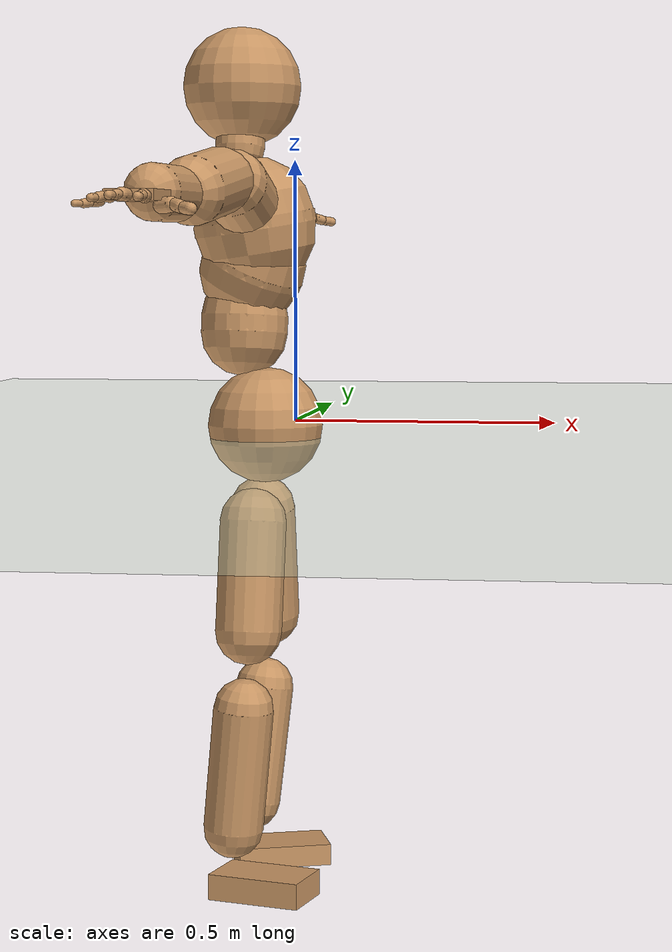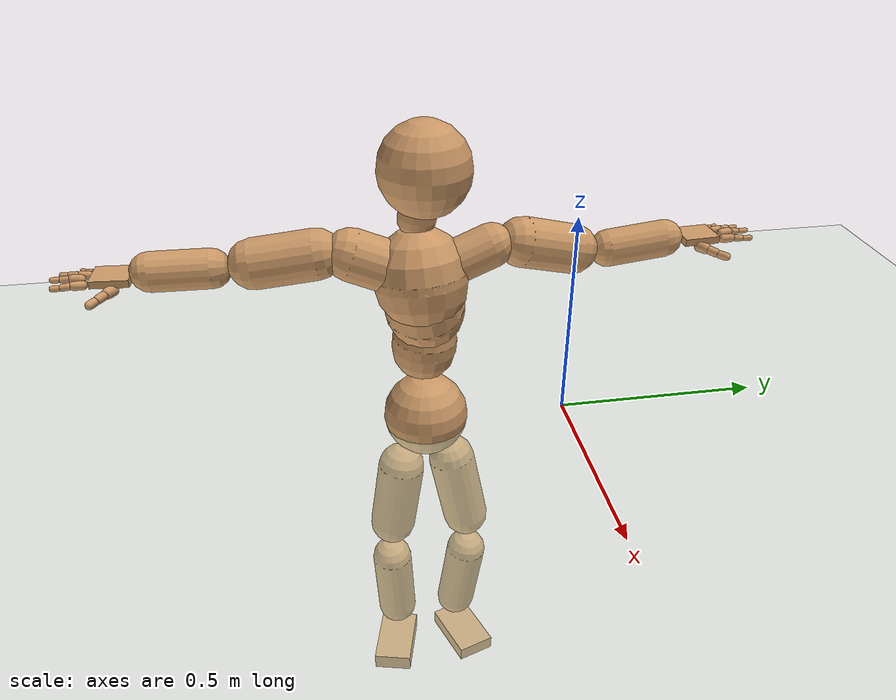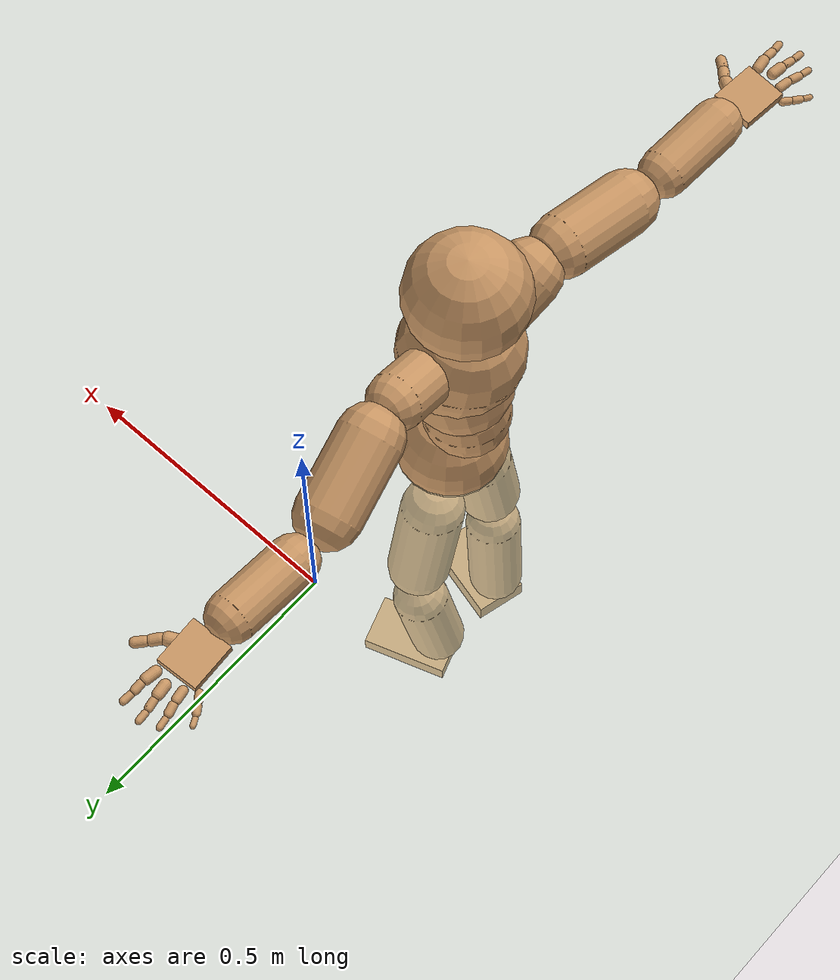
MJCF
<mujoco model="humanoid">
  <compiler coordinate="local" angle="radian"/>
  <default>
    <joint damping="0.0" armature="0.01" stiffness="0.0" limited="true"/>
    <geom conaffinity="1" condim="3" contype="7" margin="0.001" rgba="0.8 0.6 .4 1"/>
  </default>
  <asset>
    <texture type="skybox" builtin="gradient" rgb1=".4 .5 .6" rgb2="0 0 0" width="100" height="100"/>
    <texture builtin="flat" height="1278" mark="cross" markrgb="1 1 1" name="texgeom" random="0.01" rgb1="0.8 0.6 0.4" rgb2="0.8 0.6 0.4" type="cube" width="127"/>
    <texture builtin="checker" height="100" name="texplane" rgb1="0 0 0" rgb2="0.8 0.8 0.8" type="2d" width="100"/>
    <material name="MatPlane" reflectance="0.5" shininess="1" specular="1" texrepeat="60 60" texture="texplane"/>
    <material name="geom" texture="texgeom" texuniform="true"/>
  </asset>
  <worldbody>
    <light cutoff="100" diffuse="1 1 1" dir="-0 0 -1.3" directional="true" exponent="1" pos="0 0 1.3" specular=".1 .1 .1"/>
    <geom conaffinity="1" condim="3" name="floor" pos="0 0 0" rgba="0.8 0.9 0.8 1" size="100 100 .2" type="plane" material="MatPlane"/>
    <body name="Pelvis" pos="0.0013 -0.3485 0.0207">
      <freejoint name="Pelvis"/>
      <geom type="sphere" contype="1" conaffinity="1" density="500" size="0.1024" pos="0.0000 0.0000 0.0000" name="Pelvis"/>
      <body name="L_Hip" pos="-0.0179 0.0533 -0.09">
        <joint name="L_Hip_x" type="hinge" pos="0 0 0" axis="1 0 0" stiffness="800" damping="80" armature="0.02" range="-180.0000 180.0000"/>
        <joint name="L_Hip_y" type="hinge" pos="0 0 0" axis="0 1 0" stiffness="800" damping="80" armature="0.02" range="-180.0000 180.0000"/>
        <joint name="L_Hip_z" type="hinge" pos="0 0 0" axis="0 0 1" stiffness="800" damping="80" armature="0.02" range="-180.0000 180.0000"/>
        <geom type="capsule" contype="1" conaffinity="1" density="500" fromto="0.0003 0.0128 -0.0666 0.0013 0.0511 -0.2665" size="0.0584" name="L_Hip"/>
        <body name="L_Knee" pos="0.0016 0.0639 -0.3331">
          <joint name="L_Knee_x" type="hinge" pos="0 0 0" axis="1 0 0" stiffness="800" damping="80" armature="0.02" range="-180.0000 180.0000"/>
          <joint name="L_Knee_y" type="hinge" pos="0 0 0" axis="0 1 0" stiffness="800" damping="80" armature="0.02" range="-180.0000 180.0000"/>
          <joint name="L_Knee_z" type="hinge" pos="0 0 0" axis="0 0 1" stiffness="800" damping="80" armature="0.02" range="-180.0000 180.0000"/>
          <geom type="capsule" contype="1" conaffinity="1" density="500" fromto="-0.0072 -0.0086 -0.0701 -0.0287 -0.0343 -0.2805" size="0.0528" name="L_Knee"/>
          <body name="L_Ankle" pos="-0.0358 -0.0428 -0.3507">
            <joint name="L_Ankle_x" type="hinge" pos="0 0 0" axis="1 0 0" stiffness="800" damping="80" armature="0.02" range="-180.0000 180.0000"/>
            <joint name="L_Ankle_y" type="hinge" pos="0 0 0" axis="0 1 0" stiffness="800" damping="80" armature="0.02" range="-180.0000 180.0000"/>
            <joint name="L_Ankle_z" type="hinge" pos="0 0 0" axis="0 0 1" stiffness="800" damping="80" armature="0.02" range="-180.0000 180.0000"/>
            <geom type="box" contype="1" conaffinity="1" density="500" pos="0.0605 0.0206 -0.0248" size="0.0843 0.0505 0.0191" quat="0.9865 0.0000 0.0000 0.1635" name="L_Ankle"/>
            <body name="L_Toe" pos="0.121 0.0412 -0.0495">
              <joint name="L_Toe_x" type="hinge" pos="0 0 0" axis="1 0 0" stiffness="500" damping="50" armature="0.02" range="-180.0000 180.0000"/>
              <joint name="L_Toe_y" type="hinge" pos="0 0 0" axis="0 1 0" stiffness="500" damping="50" armature="0.02" range="-180.0000 180.0000"/>
              <joint name="L_Toe_z" type="hinge" pos="0 0 0" axis="0 0 1" stiffness="500" damping="50" armature="0.02" range="-180.0000 180.0000"/>
              <geom type="box" contype="1" conaffinity="1" density="500" pos="0.0000 0.0000 0.0268" size="0.001 0.0024 0.0011" quat="0.9858 0.0000 0.0000 0.1682" name="L_Toe"/>
            </body>
          </body>
        </body>
      </body>
      <body name="R_Hip" pos="-0.0102 -0.0552 -0.1014">
        <joint name="R_Hip_x" type="hinge" pos="0 0 0" axis="1 0 0" stiffness="800" damping="80" armature="0.02" range="-180.0000 180.0000"/>
        <joint name="R_Hip_y" type="hinge" pos="0 0 0" axis="0 1 0" stiffness="800" damping="80" armature="0.02" range="-180.0000 180.0000"/>
        <joint name="R_Hip_z" type="hinge" pos="0 0 0" axis="0 0 1" stiffness="800" damping="80" armature="0.02" range="-180.0000 180.0000"/>
        <geom type="capsule" contype="1" conaffinity="1" density="500" fromto="-0.0013 -0.0097 -0.0635 -0.0054 -0.0387 -0.2540" size="0.0585" name="R_Hip"/>
        <body name="R_Knee" pos="-0.0067 -0.0484 -0.3175">
          <joint name="R_Knee_x" type="hinge" pos="0 0 0" axis="1 0 0" stiffness="800" damping="80" armature="0.02" range="-180.0000 180.0000"/>
          <joint name="R_Knee_y" type="hinge" pos="0 0 0" axis="0 1 0" stiffness="800" damping="80" armature="0.02" range="-180.0000 180.0000"/>
          <joint name="R_Knee_z" type="hinge" pos="0 0 0" axis="0 0 1" stiffness="800" damping="80" armature="0.02" range="-180.0000 180.0000"/>
          <geom type="capsule" contype="1" conaffinity="1" density="500" fromto="-0.0071 0.0031 -0.0723 -0.0283 0.0124 -0.2890" size="0.0528" name="R_Knee"/>
          <body name="R_Ankle" pos="-0.0354 0.0155 -0.3613">
            <joint name="R_Ankle_x" type="hinge" pos="0 0 0" axis="1 0 0" stiffness="800" damping="80" armature="0.02" range="-180.0000 180.0000"/>
            <joint name="R_Ankle_y" type="hinge" pos="0 0 0" axis="0 1 0" stiffness="800" damping="80" armature="0.02" range="-180.0000 180.0000"/>
            <joint name="R_Ankle_z" type="hinge" pos="0 0 0" axis="0 0 1" stiffness="800" damping="80" armature="0.02" range="-180.0000 180.0000"/>
            <geom type="box" contype="1" conaffinity="1" density="500" pos="0.0638 -0.0164 -0.0245" size="0.0843 0.0505 0.0228" quat="0.9921 0.0000 0.0000 -0.1258" name="R_Ankle"/>
            <body name="R_Toe" pos="0.1276 -0.0329 -0.049">
              <joint name="R_Toe_x" type="hinge" pos="0 0 0" axis="1 0 0" stiffness="500" damping="50" armature="0.02" range="-180.0000 180.0000"/>
              <joint name="R_Toe_y" type="hinge" pos="0 0 0" axis="0 1 0" stiffness="500" damping="50" armature="0.02" range="-180.0000 180.0000"/>
              <joint name="R_Toe_z" type="hinge" pos="0 0 0" axis="0 0 1" stiffness="500" damping="50" armature="0.02" range="-180.0000 180.0000"/>
              <geom type="box" contype="1" conaffinity="1" density="500" pos="0.0000 0.0000 0.0229" size="0.001 0.0024 0.0011" quat="0.9932 0.0000 0.0000 -0.1167" name="R_Toe"/>
            </body>
          </body>
        </body>
      </body>
      <body name="Torso" pos="-0.0393 -0.0012 0.1042">
        <joint name="Torso_x" type="hinge" pos="0 0 0" axis="1 0 0" stiffness="1000" damping="100" armature="0.02" range="-180.0000 180.0000"/>
        <joint name="Torso_y" type="hinge" pos="0 0 0" axis="0 1 0" stiffness="1000" damping="100" armature="0.02" range="-180.0000 180.0000"/>
        <joint name="Torso_z" type="hinge" pos="0 0 0" axis="0 0 1" stiffness="1000" damping="100" armature="0.02" range="-180.0000 180.0000"/>
        <geom type="capsule" contype="1" conaffinity="1" density="500" fromto="0.0021 0.0074 0.0879 0.0014 0.0049 0.0586" size="0.0768" name="Torso"/>
        <body name="Spine" pos="0.0036 0.0123 0.1465">
          <joint name="Spine_x" type="hinge" pos="0 0 0" axis="1 0 0" stiffness="1000" damping="100" armature="0.02" range="-180.0000 180.0000"/>
          <joint name="Spine_y" type="hinge" pos="0 0 0" axis="0 1 0" stiffness="1000" damping="100" armature="0.02" range="-180.0000 180.0000"/>
          <joint name="Spine_z" type="hinge" pos="0 0 0" axis="0 0 1" stiffness="1000" damping="100" armature="0.02" range="-180.0000 180.0000"/>
          <geom type="capsule" contype="1" conaffinity="1" density="500" fromto="0.0159 -0.0060 0.0331 0.0106 -0.0040 0.0221" size="0.0926" name="Spine"/>
          <body name="Chest" pos="0.0265 -0.01 0.0551">
            <joint name="Chest_x" type="hinge" pos="0 0 0" axis="1 0 0" stiffness="1000" damping="100" armature="0.02" range="-180.0000 180.0000"/>
            <joint name="Chest_y" type="hinge" pos="0 0 0" axis="0 1 0" stiffness="1000" damping="100" armature="0.02" range="-180.0000 180.0000"/>
            <joint name="Chest_z" type="hinge" pos="0 0 0" axis="0 0 1" stiffness="1000" damping="100" armature="0.02" range="-180.0000 180.0000"/>
            <geom type="capsule" contype="1" conaffinity="1" density="500" fromto="-0.0092 -0.0036 0.0590 -0.0062 -0.0024 0.0394" size="0.1079" name="Chest"/>
            <body name="Neck" pos="-0.0326 -0.0115 0.1529">
              <joint name="Neck_x" type="hinge" pos="0 0 0" axis="1 0 0" stiffness="500" damping="50" armature="0.02" range="-180.0000 180.0000"/>
              <joint name="Neck_y" type="hinge" pos="0 0 0" axis="0 1 0" stiffness="500" damping="50" armature="0.02" range="-180.0000 180.0000"/>
              <joint name="Neck_z" type="hinge" pos="0 0 0" axis="0 0 1" stiffness="500" damping="50" armature="0.02" range="-180.0000 180.0000"/>
              <geom type="capsule" contype="1" conaffinity="1" density="500" fromto="0.0003 0.0049 0.0269 0.0011 0.0197 0.1077" size="0.0433" name="Neck"/>
              <body name="Head" pos="0.0014 0.0246 0.1346">
                <joint name="Head_x" type="hinge" pos="0 0 0" axis="1 0 0" stiffness="500" damping="50" armature="0.02" range="-180.0000 180.0000"/>
                <joint name="Head_y" type="hinge" pos="0 0 0" axis="0 1 0" stiffness="500" damping="50" armature="0.02" range="-180.0000 180.0000"/>
                <joint name="Head_z" type="hinge" pos="0 0 0" axis="0 0 1" stiffness="500" damping="50" armature="0.02" range="-180.0000 180.0000"/>
                <geom type="sphere" contype="1" conaffinity="1" density="500" size="0.1043" pos="0.0000 0.0000 0.0000" name="Head"/>
              </body>
            </body>
            <body name="L_Thorax" pos="-0.0057 0.0433 0.0708">
              <joint name="L_Thorax_x" type="hinge" pos="0 0 0" axis="1 0 0" stiffness="500" damping="50" armature="0.02" range="-180.0000 180.0000"/>
              <joint name="L_Thorax_y" type="hinge" pos="0 0 0" axis="0 1 0" stiffness="500" damping="50" armature="0.02" range="-180.0000 180.0000"/>
              <joint name="L_Thorax_z" type="hinge" pos="0 0 0" axis="0 0 1" stiffness="500" damping="50" armature="0.02" range="-180.0000 180.0000"/>
              <geom type="capsule" contype="1" conaffinity="1" density="500" fromto="-0.0018 0.0286 0.0108 -0.0073 0.1144 0.0432" size="0.0502" name="L_Thorax"/>
              <body name="L_Shoulder" pos="-0.0092 0.143 0.0539">
                <joint name="L_Shoulder_x" type="hinge" pos="0 0 0" axis="1 0 0" stiffness="500" damping="50" armature="0.02" range="-180.0000 180.0000"/>
                <joint name="L_Shoulder_y" type="hinge" pos="0 0 0" axis="0 1 0" stiffness="500" damping="50" armature="0.02" range="-180.0000 180.0000"/>
                <joint name="L_Shoulder_z" type="hinge" pos="0 0 0" axis="0 0 1" stiffness="500" damping="50" armature="0.02" range="-180.0000 180.0000"/>
                <geom type="capsule" contype="1" conaffinity="1" density="500" fromto="-0.0096 0.0432 -0.0132 -0.0383 0.1730 -0.0527" size="0.0571" name="L_Shoulder"/>
                <body name="L_Elbow" pos="-0.0479 0.2162 -0.0659">
                  <joint name="L_Elbow_x" type="hinge" pos="0 0 0" axis="1 0 0" stiffness="500" damping="50" armature="0.02" range="-720.0000 720.0000"/>
                  <joint name="L_Elbow_y" type="hinge" pos="0 0 0" axis="0 1 0" stiffness="500" damping="50" armature="0.02" range="-720.0000 720.0000"/>
                  <joint name="L_Elbow_z" type="hinge" pos="0 0 0" axis="0 0 1" stiffness="500" damping="50" armature="0.02" range="-720.0000 720.0000"/>
                  <geom type="capsule" contype="1" conaffinity="1" density="500" fromto="0.0007 0.0446 0.0052 0.0029 0.1786 0.0208" size="0.0434" name="L_Elbow"/>
                  <body name="L_Wrist" pos="0.0036 0.2232 0.026">
                    <joint name="L_Wrist_x" type="hinge" pos="0 0 0" axis="1 0 0" stiffness="300" damping="30" armature="0.02" range="-180.0000 180.0000"/>
                    <joint name="L_Wrist_y" type="hinge" pos="0 0 0" axis="0 1 0" stiffness="300" damping="30" armature="0.02" range="-180.0000 180.0000"/>
                    <joint name="L_Wrist_z" type="hinge" pos="0 0 0" axis="0 0 1" stiffness="300" damping="30" armature="0.02" range="-180.0000 180.0000"/>
                    <geom type="box" contype="1" conaffinity="1" density="500" pos="-0.0024 0.0371 -0.0049" size="0.0423 0.0378 0.0082" quat="0.7296 0.0000 0.0000 -0.6839" name="L_Wrist"/>
                    <body name="L_Index1" pos="0.0224 0.0886 -0.0066">
                      <joint name="L_Index1_x" type="hinge" pos="0 0 0" axis="1 0 0" stiffness="100" damping="10" armature="0.02" range="-180.0000 180.0000"/>
                      <joint name="L_Index1_y" type="hinge" pos="0 0 0" axis="0 1 0" stiffness="100" damping="10" armature="0.02" range="-180.0000 180.0000"/>
                      <joint name="L_Index1_z" type="hinge" pos="0 0 0" axis="0 0 1" stiffness="100" damping="10" armature="0.02" range="-180.0000 180.0000"/>
                      <geom type="capsule" contype="1" conaffinity="1" density="500" fromto="0.0007 0.0062 0.0003 0.0030 0.0246 0.0014" size="0.0098" name="L_Index1"/>
                      <body name="L_Index2" pos="0.0037 0.0308 0.0017">
                        <joint name="L_Index2_x" type="hinge" pos="0 0 0" axis="1 0 0" stiffness="100" damping="10" armature="0.02" range="-180.0000 180.0000"/>
                        <joint name="L_Index2_y" type="hinge" pos="0 0 0" axis="0 1 0" stiffness="100" damping="10" armature="0.02" range="-180.0000 180.0000"/>
                        <joint name="L_Index2_z" type="hinge" pos="0 0 0" axis="0 0 1" stiffness="100" damping="10" armature="0.02" range="-180.0000 180.0000"/>
                        <geom type="capsule" contype="1" conaffinity="1" density="500" fromto="-0.0001 0.0044 -0.0005 -0.0004 0.0174 -0.0020" size="0.0078" name="L_Index2"/>
                        <body name="L_Index3" pos="-0.0004 0.0218 -0.0026">
                          <joint name="L_Index3_x" type="hinge" pos="0 0 0" axis="1 0 0" stiffness="100" damping="10" armature="0.02" range="-180.0000 180.0000"/>
                          <joint name="L_Index3_y" type="hinge" pos="0 0 0" axis="0 1 0" stiffness="100" damping="10" armature="0.02" range="-180.0000 180.0000"/>
                          <joint name="L_Index3_z" type="hinge" pos="0 0 0" axis="0 0 1" stiffness="100" damping="10" armature="0.02" range="-180.0000 180.0000"/>
                          <geom type="capsule" contype="1" conaffinity="1" density="500" fromto="0.0003 0.0048 -0.0001 0.0012 0.0190 -0.0004" size="0.0066" name="L_Index3"/>
                        </body>
                      </body>
                    </body>
                    <body name="L_Middle1" pos="-0.0024 0.0957 -0.0038">
                      <joint name="L_Middle1_x" type="hinge" pos="0 0 0" axis="1 0 0" stiffness="100" damping="10" armature="0.02" range="-180.0000 180.0000"/>
                      <joint name="L_Middle1_y" type="hinge" pos="0 0 0" axis="0 1 0" stiffness="100" damping="10" armature="0.02" range="-180.0000 180.0000"/>
                      <joint name="L_Middle1_z" type="hinge" pos="0 0 0" axis="0 0 1" stiffness="100" damping="10" armature="0.02" range="-180.0000 180.0000"/>
                      <geom type="capsule" contype="1" conaffinity="1" density="500" fromto="-0.0008 0.0059 0.0001 -0.0034 0.0236 0.0005" size="0.0099" name="L_Middle1"/>
                      <body name="L_Middle2" pos="-0.0042 0.0295 0.0006">
                        <joint name="L_Middle2_x" type="hinge" pos="0 0 0" axis="1 0 0" stiffness="100" damping="10" armature="0.02" range="-180.0000 180.0000"/>
                        <joint name="L_Middle2_y" type="hinge" pos="0 0 0" axis="0 1 0" stiffness="100" damping="10" armature="0.02" range="-180.0000 180.0000"/>
                        <joint name="L_Middle2_z" type="hinge" pos="0 0 0" axis="0 0 1" stiffness="100" damping="10" armature="0.02" range="-180.0000 180.0000"/>
                        <geom type="capsule" contype="1" conaffinity="1" density="500" fromto="-0.0009 0.0045 -0.0005 -0.0034 0.0179 -0.0020" size="0.0072" name="L_Middle2"/>
                        <body name="L_Middle3" pos="-0.0043 0.0224 -0.0025">
                          <joint name="L_Middle3_x" type="hinge" pos="0 0 0" axis="1 0 0" stiffness="100" damping="10" armature="0.02" range="-180.0000 180.0000"/>
                          <joint name="L_Middle3_y" type="hinge" pos="0 0 0" axis="0 1 0" stiffness="100" damping="10" armature="0.02" range="-180.0000 180.0000"/>
                          <joint name="L_Middle3_z" type="hinge" pos="0 0 0" axis="0 0 1" stiffness="100" damping="10" armature="0.02" range="-180.0000 180.0000"/>
                          <geom type="capsule" contype="1" conaffinity="1" density="500" fromto="-0.0005 0.0049 -0.0001 -0.0018 0.0195 -0.0004" size="0.0062" name="L_Middle3"/>
                        </body>
                      </body>
                    </body>
                    <body name="L_Pinky1" pos="-0.0448 0.0715 -0.0129">
                      <joint name="L_Pinky1_x" type="hinge" pos="0 0 0" axis="1 0 0" stiffness="100" damping="10" armature="0.02" range="-180.0000 180.0000"/>
                      <joint name="L_Pinky1_y" type="hinge" pos="0 0 0" axis="0 1 0" stiffness="100" damping="10" armature="0.02" range="-180.0000 180.0000"/>
                      <joint name="L_Pinky1_z" type="hinge" pos="0 0 0" axis="0 0 1" stiffness="100" damping="10" armature="0.02" range="-180.0000 180.0000"/>
                      <geom type="capsule" contype="1" conaffinity="1" density="500" fromto="-0.0024 0.0032 -0.0003 -0.0096 0.0127 -0.0013" size="0.007" name="L_Pinky1"/>
                      <body name="L_Pinky2" pos="-0.012 0.0159 -0.0016">
                        <joint name="L_Pinky2_x" type="hinge" pos="0 0 0" axis="1 0 0" stiffness="100" damping="10" armature="0.02" range="-180.0000 180.0000"/>
                        <joint name="L_Pinky2_y" type="hinge" pos="0 0 0" axis="0 1 0" stiffness="100" damping="10" armature="0.02" range="-180.0000 180.0000"/>
                        <joint name="L_Pinky2_z" type="hinge" pos="0 0 0" axis="0 0 1" stiffness="100" damping="10" armature="0.02" range="-180.0000 180.0000"/>
                        <geom type="capsule" contype="1" conaffinity="1" density="500" fromto="-0.0022 0.0031 -0.0004 -0.0087 0.0126 -0.0017" size="0.0067" name="L_Pinky2"/>
                        <body name="L_Pinky3" pos="-0.0109 0.0157 -0.0021">
                          <joint name="L_Pinky3_x" type="hinge" pos="0 0 0" axis="1 0 0" stiffness="100" damping="10" armature="0.02" range="-180.0000 180.0000"/>
                          <joint name="L_Pinky3_y" type="hinge" pos="0 0 0" axis="0 1 0" stiffness="100" damping="10" armature="0.02" range="-180.0000 180.0000"/>
                          <joint name="L_Pinky3_z" type="hinge" pos="0 0 0" axis="0 0 1" stiffness="100" damping="10" armature="0.02" range="-180.0000 180.0000"/>
                          <geom type="capsule" contype="1" conaffinity="1" density="500" fromto="-0.0018 0.0035 -0.0000 -0.0071 0.0142 -0.0001" size="0.0049" name="L_Pinky3"/>
                        </body>
                      </body>
                    </body>
                    <body name="L_Ring1" pos="-0.0273 0.0841 -0.0069">
                      <joint name="L_Ring1_x" type="hinge" pos="0 0 0" axis="1 0 0" stiffness="100" damping="10" armature="0.02" range="-180.0000 180.0000"/>
                      <joint name="L_Ring1_y" type="hinge" pos="0 0 0" axis="0 1 0" stiffness="100" damping="10" armature="0.02" range="-180.0000 180.0000"/>
                      <joint name="L_Ring1_z" type="hinge" pos="0 0 0" axis="0 0 1" stiffness="100" damping="10" armature="0.02" range="-180.0000 180.0000"/>
                      <geom type="capsule" contype="1" conaffinity="1" density="500" fromto="-0.0010 0.0055 0.0001 -0.0039 0.0219 0.0005" size="0.0084" name="L_Ring1"/>
                      <body name="L_Ring2" pos="-0.0048 0.0274 0.0006">
                        <joint name="L_Ring2_x" type="hinge" pos="0 0 0" axis="1 0 0" stiffness="100" damping="10" armature="0.02" range="-180.0000 180.0000"/>
                        <joint name="L_Ring2_y" type="hinge" pos="0 0 0" axis="0 1 0" stiffness="100" damping="10" armature="0.02" range="-180.0000 180.0000"/>
                        <joint name="L_Ring2_z" type="hinge" pos="0 0 0" axis="0 0 1" stiffness="100" damping="10" armature="0.02" range="-180.0000 180.0000"/>
                        <geom type="capsule" contype="1" conaffinity="1" density="500" fromto="-0.0013 0.0045 -0.0005 -0.0051 0.0179 -0.0020" size="0.0077" name="L_Ring2"/>
                        <body name="L_Ring3" pos="-0.0064 0.0223 -0.0025">
                          <joint name="L_Ring3_x" type="hinge" pos="0 0 0" axis="1 0 0" stiffness="100" damping="10" armature="0.02" range="-180.0000 180.0000"/>
                          <joint name="L_Ring3_y" type="hinge" pos="0 0 0" axis="0 1 0" stiffness="100" damping="10" armature="0.02" range="-180.0000 180.0000"/>
                          <joint name="L_Ring3_z" type="hinge" pos="0 0 0" axis="0 0 1" stiffness="100" damping="10" armature="0.02" range="-180.0000 180.0000"/>
                          <geom type="capsule" contype="1" conaffinity="1" density="500" fromto="-0.0009 0.0049 -0.0001 -0.0035 0.0195 -0.0004" size="0.0058" name="L_Ring3"/>
                        </body>
                      </body>
                    </body>
                    <body name="L_Thumb1" pos="0.0281 0.0315 -0.0184">
                      <joint name="L_Thumb1_x" type="hinge" pos="0 0 0" axis="1 0 0" stiffness="100" damping="10" armature="0.02" range="-180.0000 180.0000"/>
                      <joint name="L_Thumb1_y" type="hinge" pos="0 0 0" axis="0 1 0" stiffness="100" damping="10" armature="0.02" range="-180.0000 180.0000"/>
                      <joint name="L_Thumb1_z" type="hinge" pos="0 0 0" axis="0 0 1" stiffness="100" damping="10" armature="0.02" range="-180.0000 180.0000"/>
                      <geom type="capsule" contype="1" conaffinity="1" density="500" fromto="0.0053 0.0029 0.0004 0.0211 0.0115 0.0018" size="0.0122" name="L_Thumb1"/>
                      <body name="L_Thumb2" pos="0.0264 0.0144 0.0022">
                        <joint name="L_Thumb2_x" type="hinge" pos="0 0 0" axis="1 0 0" stiffness="100" damping="10" armature="0.02" range="-180.0000 180.0000"/>
                        <joint name="L_Thumb2_y" type="hinge" pos="0 0 0" axis="0 1 0" stiffness="100" damping="10" armature="0.02" range="-180.0000 180.0000"/>
                        <joint name="L_Thumb2_z" type="hinge" pos="0 0 0" axis="0 0 1" stiffness="100" damping="10" armature="0.02" range="-180.0000 180.0000"/>
                        <geom type="capsule" contype="1" conaffinity="1" density="500" fromto="0.0033 0.0036 -0.0010 0.0131 0.0143 -0.0040" size="0.0099" name="L_Thumb2"/>
                        <body name="L_Thumb3" pos="0.0164 0.0178 -0.005">
                          <joint name="L_Thumb3_x" type="hinge" pos="0 0 0" axis="1 0 0" stiffness="100" damping="10" armature="0.02" range="-180.0000 180.0000"/>
                          <joint name="L_Thumb3_y" type="hinge" pos="0 0 0" axis="0 1 0" stiffness="100" damping="10" armature="0.02" range="-180.0000 180.0000"/>
                          <joint name="L_Thumb3_z" type="hinge" pos="0 0 0" axis="0 0 1" stiffness="100" damping="10" armature="0.02" range="-180.0000 180.0000"/>
                          <geom type="capsule" contype="1" conaffinity="1" density="500" fromto="0.0037 0.0040 -0.0006 0.0147 0.0159 -0.0024" size="0.0091" name="L_Thumb3"/>
                        </body>
                      </body>
                    </body>
                  </body>
                </body>
              </body>
            </body>
            <body name="R_Thorax" pos="-0.0079 -0.0496 0.0716">
              <joint name="R_Thorax_x" type="hinge" pos="0 0 0" axis="1 0 0" stiffness="500" damping="50" armature="0.02" range="-180.0000 180.0000"/>
              <joint name="R_Thorax_y" type="hinge" pos="0 0 0" axis="0 1 0" stiffness="500" damping="50" armature="0.02" range="-180.0000 180.0000"/>
              <joint name="R_Thorax_z" type="hinge" pos="0 0 0" axis="0 0 1" stiffness="500" damping="50" armature="0.02" range="-180.0000 180.0000"/>
              <geom type="capsule" contype="1" conaffinity="1" density="500" fromto="-0.0023 -0.0263 0.0104 -0.0093 -0.1050 0.0415" size="0.0591" name="R_Thorax"/>
              <body name="R_Shoulder" pos="-0.0116 -0.1313 0.0518">
                <joint name="R_Shoulder_x" type="hinge" pos="0 0 0" axis="1 0 0" stiffness="500" damping="50" armature="0.02" range="-180.0000 180.0000"/>
                <joint name="R_Shoulder_y" type="hinge" pos="0 0 0" axis="0 1 0" stiffness="500" damping="50" armature="0.02" range="-180.0000 180.0000"/>
                <joint name="R_Shoulder_z" type="hinge" pos="0 0 0" axis="0 0 1" stiffness="500" damping="50" armature="0.02" range="-180.0000 180.0000"/>
                <geom type="capsule" contype="1" conaffinity="1" density="500" fromto="-0.0060 -0.0464 -0.0068 -0.0242 -0.1857 -0.0272" size="0.0565" name="R_Shoulder"/>
                <body name="R_Elbow" pos="-0.0302 -0.2321 -0.034">
                  <joint name="R_Elbow_x" type="hinge" pos="0 0 0" axis="1 0 0" stiffness="500" damping="50" armature="0.02" range="-720.0000 720.0000"/>
                  <joint name="R_Elbow_y" type="hinge" pos="0 0 0" axis="0 1 0" stiffness="500" damping="50" armature="0.02" range="-720.0000 720.0000"/>
                  <joint name="R_Elbow_z" type="hinge" pos="0 0 0" axis="0 0 1" stiffness="500" damping="50" armature="0.02" range="-720.0000 720.0000"/>
                  <geom type="capsule" contype="1" conaffinity="1" density="500" fromto="-0.0017 -0.0436 -0.0002 -0.0067 -0.1744 -0.0007" size="0.0442" name="R_Elbow"/>
                  <body name="R_Wrist" pos="-0.0083 -0.218 -0.0008">
                    <joint name="R_Wrist_x" type="hinge" pos="0 0 0" axis="1 0 0" stiffness="300" damping="30" armature="0.02" range="-180.0000 180.0000"/>
                    <joint name="R_Wrist_y" type="hinge" pos="0 0 0" axis="0 1 0" stiffness="300" damping="30" armature="0.02" range="-180.0000 180.0000"/>
                    <joint name="R_Wrist_z" type="hinge" pos="0 0 0" axis="0 0 1" stiffness="300" damping="30" armature="0.02" range="-180.0000 180.0000"/>
                    <geom type="box" contype="1" conaffinity="1" density="500" pos="-0.0030 -0.0369 -0.0067" size="0.0423 0.0386 0.0083" quat="0.7348 0.0000 0.0000 0.6783" name="R_Wrist"/>
                    <body name="R_Index1" pos="0.0213 -0.0882 -0.0103">
                      <joint name="R_Index1_x" type="hinge" pos="0 0 0" axis="1 0 0" stiffness="100" damping="10" armature="0.02" range="-180.0000 180.0000"/>
                      <joint name="R_Index1_y" type="hinge" pos="0 0 0" axis="0 1 0" stiffness="100" damping="10" armature="0.02" range="-180.0000 180.0000"/>
                      <joint name="R_Index1_z" type="hinge" pos="0 0 0" axis="0 0 1" stiffness="100" damping="10" armature="0.02" range="-180.0000 180.0000"/>
                      <geom type="capsule" contype="1" conaffinity="1" density="500" fromto="0.0007 -0.0062 0.0003 0.0030 -0.0246 0.0014" size="0.0098" name="R_Index1"/>
                      <body name="R_Index2" pos="0.0037 -0.0308 0.0017">
                        <joint name="R_Index2_x" type="hinge" pos="0 0 0" axis="1 0 0" stiffness="100" damping="10" armature="0.02" range="-180.0000 180.0000"/>
                        <joint name="R_Index2_y" type="hinge" pos="0 0 0" axis="0 1 0" stiffness="100" damping="10" armature="0.02" range="-180.0000 180.0000"/>
                        <joint name="R_Index2_z" type="hinge" pos="0 0 0" axis="0 0 1" stiffness="100" damping="10" armature="0.02" range="-180.0000 180.0000"/>
                        <geom type="capsule" contype="1" conaffinity="1" density="500" fromto="-0.0001 -0.0044 -0.0005 -0.0004 -0.0174 -0.0020" size="0.0078" name="R_Index2"/>
                        <body name="R_Index3" pos="-0.0004 -0.0218 -0.0026">
                          <joint name="R_Index3_x" type="hinge" pos="0 0 0" axis="1 0 0" stiffness="100" damping="10" armature="0.02" range="-180.0000 180.0000"/>
                          <joint name="R_Index3_y" type="hinge" pos="0 0 0" axis="0 1 0" stiffness="100" damping="10" armature="0.02" range="-180.0000 180.0000"/>
                          <joint name="R_Index3_z" type="hinge" pos="0 0 0" axis="0 0 1" stiffness="100" damping="10" armature="0.02" range="-180.0000 180.0000"/>
                          <geom type="capsule" contype="1" conaffinity="1" density="500" fromto="0.0003 -0.0040 -0.0001 0.0012 -0.0158 -0.0004" size="0.0069" name="R_Index3"/>
                        </body>
                      </body>
                    </body>
                    <body name="R_Middle1" pos="-0.0035 -0.0953 -0.0076">
                      <joint name="R_Middle1_x" type="hinge" pos="0 0 0" axis="1 0 0" stiffness="100" damping="10" armature="0.02" range="-180.0000 180.0000"/>
                      <joint name="R_Middle1_y" type="hinge" pos="0 0 0" axis="0 1 0" stiffness="100" damping="10" armature="0.02" range="-180.0000 180.0000"/>
                      <joint name="R_Middle1_z" type="hinge" pos="0 0 0" axis="0 0 1" stiffness="100" damping="10" armature="0.02" range="-180.0000 180.0000"/>
                      <geom type="capsule" contype="1" conaffinity="1" density="500" fromto="-0.0008 -0.0059 0.0001 -0.0034 -0.0236 0.0005" size="0.0099" name="R_Middle1"/>
                      <body name="R_Middle2" pos="-0.0042 -0.0295 0.0006">
                        <joint name="R_Middle2_x" type="hinge" pos="0 0 0" axis="1 0 0" stiffness="100" damping="10" armature="0.02" range="-180.0000 180.0000"/>
                        <joint name="R_Middle2_y" type="hinge" pos="0 0 0" axis="0 1 0" stiffness="100" damping="10" armature="0.02" range="-180.0000 180.0000"/>
                        <joint name="R_Middle2_z" type="hinge" pos="0 0 0" axis="0 0 1" stiffness="100" damping="10" armature="0.02" range="-180.0000 180.0000"/>
                        <geom type="capsule" contype="1" conaffinity="1" density="500" fromto="-0.0009 -0.0045 -0.0005 -0.0034 -0.0179 -0.0020" size="0.0072" name="R_Middle2"/>
                        <body name="R_Middle3" pos="-0.0043 -0.0224 -0.0025">
                          <joint name="R_Middle3_x" type="hinge" pos="0 0 0" axis="1 0 0" stiffness="100" damping="10" armature="0.02" range="-180.0000 180.0000"/>
                          <joint name="R_Middle3_y" type="hinge" pos="0 0 0" axis="0 1 0" stiffness="100" damping="10" armature="0.02" range="-180.0000 180.0000"/>
                          <joint name="R_Middle3_z" type="hinge" pos="0 0 0" axis="0 0 1" stiffness="100" damping="10" armature="0.02" range="-180.0000 180.0000"/>
                          <geom type="capsule" contype="1" conaffinity="1" density="500" fromto="-0.0005 -0.0041 -0.0001 -0.0018 -0.0163 -0.0004" size="0.0065" name="R_Middle3"/>
                        </body>
                      </body>
                    </body>
                    <body name="R_Pinky1" pos="-0.0459 -0.071 -0.0166">
                      <joint name="R_Pinky1_x" type="hinge" pos="0 0 0" axis="1 0 0" stiffness="100" damping="10" armature="0.02" range="-180.0000 180.0000"/>
                      <joint name="R_Pinky1_y" type="hinge" pos="0 0 0" axis="0 1 0" stiffness="100" damping="10" armature="0.02" range="-180.0000 180.0000"/>
                      <joint name="R_Pinky1_z" type="hinge" pos="0 0 0" axis="0 0 1" stiffness="100" damping="10" armature="0.02" range="-180.0000 180.0000"/>
                      <geom type="capsule" contype="1" conaffinity="1" density="500" fromto="-0.0024 -0.0032 -0.0003 -0.0096 -0.0127 -0.0013" size="0.007" name="R_Pinky1"/>
                      <body name="R_Pinky2" pos="-0.012 -0.0159 -0.0016">
                        <joint name="R_Pinky2_x" type="hinge" pos="0 0 0" axis="1 0 0" stiffness="100" damping="10" armature="0.02" range="-180.0000 180.0000"/>
                        <joint name="R_Pinky2_y" type="hinge" pos="0 0 0" axis="0 1 0" stiffness="100" damping="10" armature="0.02" range="-180.0000 180.0000"/>
                        <joint name="R_Pinky2_z" type="hinge" pos="0 0 0" axis="0 0 1" stiffness="100" damping="10" armature="0.02" range="-180.0000 180.0000"/>
                        <geom type="capsule" contype="1" conaffinity="1" density="500" fromto="-0.0022 -0.0031 -0.0004 -0.0087 -0.0126 -0.0017" size="0.0067" name="R_Pinky2"/>
                        <body name="R_Pinky3" pos="-0.0109 -0.0157 -0.0021">
                          <joint name="R_Pinky3_x" type="hinge" pos="0 0 0" axis="1 0 0" stiffness="100" damping="10" armature="0.02" range="-180.0000 180.0000"/>
                          <joint name="R_Pinky3_y" type="hinge" pos="0 0 0" axis="0 1 0" stiffness="100" damping="10" armature="0.02" range="-180.0000 180.0000"/>
                          <joint name="R_Pinky3_z" type="hinge" pos="0 0 0" axis="0 0 1" stiffness="100" damping="10" armature="0.02" range="-180.0000 180.0000"/>
                          <geom type="capsule" contype="1" conaffinity="1" density="500" fromto="-0.0018 -0.0027 -0.0000 -0.0071 -0.0110 -0.0001" size="0.0052" name="R_Pinky3"/>
                        </body>
                      </body>
                    </body>
                    <body name="R_Ring1" pos="-0.0284 -0.0837 -0.0107">
                      <joint name="R_Ring1_x" type="hinge" pos="0 0 0" axis="1 0 0" stiffness="100" damping="10" armature="0.02" range="-180.0000 180.0000"/>
                      <joint name="R_Ring1_y" type="hinge" pos="0 0 0" axis="0 1 0" stiffness="100" damping="10" armature="0.02" range="-180.0000 180.0000"/>
                      <joint name="R_Ring1_z" type="hinge" pos="0 0 0" axis="0 0 1" stiffness="100" damping="10" armature="0.02" range="-180.0000 180.0000"/>
                      <geom type="capsule" contype="1" conaffinity="1" density="500" fromto="-0.0010 -0.0055 0.0001 -0.0039 -0.0219 0.0005" size="0.0084" name="R_Ring1"/>
                      <body name="R_Ring2" pos="-0.0048 -0.0274 0.0006">
                        <joint name="R_Ring2_x" type="hinge" pos="0 0 0" axis="1 0 0" stiffness="100" damping="10" armature="0.02" range="-180.0000 180.0000"/>
                        <joint name="R_Ring2_y" type="hinge" pos="0 0 0" axis="0 1 0" stiffness="100" damping="10" armature="0.02" range="-180.0000 180.0000"/>
                        <joint name="R_Ring2_z" type="hinge" pos="0 0 0" axis="0 0 1" stiffness="100" damping="10" armature="0.02" range="-180.0000 180.0000"/>
                        <geom type="capsule" contype="1" conaffinity="1" density="500" fromto="-0.0013 -0.0045 -0.0005 -0.0051 -0.0179 -0.0020" size="0.0077" name="R_Ring2"/>
                        <body name="R_Ring3" pos="-0.0064 -0.0223 -0.0025">
                          <joint name="R_Ring3_x" type="hinge" pos="0 0 0" axis="1 0 0" stiffness="100" damping="10" armature="0.02" range="-180.0000 180.0000"/>
                          <joint name="R_Ring3_y" type="hinge" pos="0 0 0" axis="0 1 0" stiffness="100" damping="10" armature="0.02" range="-180.0000 180.0000"/>
                          <joint name="R_Ring3_z" type="hinge" pos="0 0 0" axis="0 0 1" stiffness="100" damping="10" armature="0.02" range="-180.0000 180.0000"/>
                          <geom type="capsule" contype="1" conaffinity="1" density="500" fromto="-0.0009 -0.0041 -0.0001 -0.0035 -0.0163 -0.0004" size="0.0061" name="R_Ring3"/>
                        </body>
                      </body>
                    </body>
                    <body name="R_Thumb1" pos="0.0269 -0.0311 -0.0222">
                      <joint name="R_Thumb1_x" type="hinge" pos="0 0 0" axis="1 0 0" stiffness="100" damping="10" armature="0.02" range="-180.0000 180.0000"/>
                      <joint name="R_Thumb1_y" type="hinge" pos="0 0 0" axis="0 1 0" stiffness="100" damping="10" armature="0.02" range="-180.0000 180.0000"/>
                      <joint name="R_Thumb1_z" type="hinge" pos="0 0 0" axis="0 0 1" stiffness="100" damping="10" armature="0.02" range="-180.0000 180.0000"/>
                      <geom type="capsule" contype="1" conaffinity="1" density="500" fromto="0.0053 -0.0029 0.0004 0.0211 -0.0115 0.0018" size="0.0122" name="R_Thumb1"/>
                      <body name="R_Thumb2" pos="0.0264 -0.0144 0.0022">
                        <joint name="R_Thumb2_x" type="hinge" pos="0 0 0" axis="1 0 0" stiffness="100" damping="10" armature="0.02" range="-180.0000 180.0000"/>
                        <joint name="R_Thumb2_y" type="hinge" pos="0 0 0" axis="0 1 0" stiffness="100" damping="10" armature="0.02" range="-180.0000 180.0000"/>
                        <joint name="R_Thumb2_z" type="hinge" pos="0 0 0" axis="0 0 1" stiffness="100" damping="10" armature="0.02" range="-180.0000 180.0000"/>
                        <geom type="capsule" contype="1" conaffinity="1" density="500" fromto="0.0033 -0.0036 -0.0010 0.0131 -0.0143 -0.0040" size="0.0099" name="R_Thumb2"/>
                        <body name="R_Thumb3" pos="0.0164 -0.0178 -0.005">
                          <joint name="R_Thumb3_x" type="hinge" pos="0 0 0" axis="1 0 0" stiffness="100" damping="10" armature="0.02" range="-180.0000 180.0000"/>
                          <joint name="R_Thumb3_y" type="hinge" pos="0 0 0" axis="0 1 0" stiffness="100" damping="10" armature="0.02" range="-180.0000 180.0000"/>
                          <joint name="R_Thumb3_z" type="hinge" pos="0 0 0" axis="0 0 1" stiffness="100" damping="10" armature="0.02" range="-180.0000 180.0000"/>
                          <geom type="capsule" contype="1" conaffinity="1" density="500" fromto="0.0037 -0.0032 -0.0006 0.0147 -0.0127 -0.0024" size="0.0093" name="R_Thumb3"/>
                        </body>
                      </body>
                    </body>
                  </body>
                </body>
              </body>
            </body>
          </body>
        </body>
      </body>
    </body>
  </worldbody>
  <actuator>
    <motor name="L_Hip_x" joint="L_Hip_x" gear="500"/>
    <motor name="L_Hip_y" joint="L_Hip_y" gear="500"/>
    <motor name="L_Hip_z" joint="L_Hip_z" gear="500"/>
    <motor name="L_Knee_x" joint="L_Knee_x" gear="500"/>
    <motor name="L_Knee_y" joint="L_Knee_y" gear="500"/>
    <motor name="L_Knee_z" joint="L_Knee_z" gear="500"/>
    <motor name="L_Ankle_x" joint="L_Ankle_x" gear="500"/>
    <motor name="L_Ankle_y" joint="L_Ankle_y" gear="500"/>
    <motor name="L_Ankle_z" joint="L_Ankle_z" gear="500"/>
    <motor name="L_Toe_x" joint="L_Toe_x" gear="500"/>
    <motor name="L_Toe_y" joint="L_Toe_y" gear="500"/>
    <motor name="L_Toe_z" joint="L_Toe_z" gear="500"/>
    <motor name="R_Hip_x" joint="R_Hip_x" gear="500"/>
    <motor name="R_Hip_y" joint="R_Hip_y" gear="500"/>
    <motor name="R_Hip_z" joint="R_Hip_z" gear="500"/>
    <motor name="R_Knee_x" joint="R_Knee_x" gear="500"/>
    <motor name="R_Knee_y" joint="R_Knee_y" gear="500"/>
    <motor name="R_Knee_z" joint="R_Knee_z" gear="500"/>
    <motor name="R_Ankle_x" joint="R_Ankle_x" gear="500"/>
    <motor name="R_Ankle_y" joint="R_Ankle_y" gear="500"/>
    <motor name="R_Ankle_z" joint="R_Ankle_z" gear="500"/>
    <motor name="R_Toe_x" joint="R_Toe_x" gear="500"/>
    <motor name="R_Toe_y" joint="R_Toe_y" gear="500"/>
    <motor name="R_Toe_z" joint="R_Toe_z" gear="500"/>
    <motor name="Torso_x" joint="Torso_x" gear="500"/>
    <motor name="Torso_y" joint="Torso_y" gear="500"/>
    <motor name="Torso_z" joint="Torso_z" gear="500"/>
    <motor name="Spine_x" joint="Spine_x" gear="500"/>
    <motor name="Spine_y" joint="Spine_y" gear="500"/>
    <motor name="Spine_z" joint="Spine_z" gear="500"/>
    <motor name="Chest_x" joint="Chest_x" gear="500"/>
    <motor name="Chest_y" joint="Chest_y" gear="500"/>
    <motor name="Chest_z" joint="Chest_z" gear="500"/>
    <motor name="Neck_x" joint="Neck_x" gear="500"/>
    <motor name="Neck_y" joint="Neck_y" gear="500"/>
    <motor name="Neck_z" joint="Neck_z" gear="500"/>
    <motor name="Head_x" joint="Head_x" gear="500"/>
    <motor name="Head_y" joint="Head_y" gear="500"/>
    <motor name="Head_z" joint="Head_z" gear="500"/>
    <motor name="L_Thorax_x" joint="L_Thorax_x" gear="500"/>
    <motor name="L_Thorax_y" joint="L_Thorax_y" gear="500"/>
    <motor name="L_Thorax_z" joint="L_Thorax_z" gear="500"/>
    <motor name="L_Shoulder_x" joint="L_Shoulder_x" gear="500"/>
    <motor name="L_Shoulder_y" joint="L_Shoulder_y" gear="500"/>
    <motor name="L_Shoulder_z" joint="L_Shoulder_z" gear="500"/>
    <motor name="L_Elbow_x" joint="L_Elbow_x" gear="500"/>
    <motor name="L_Elbow_y" joint="L_Elbow_y" gear="500"/>
    <motor name="L_Elbow_z" joint="L_Elbow_z" gear="500"/>
    <motor name="L_Wrist_x" joint="L_Wrist_x" gear="500"/>
    <motor name="L_Wrist_y" joint="L_Wrist_y" gear="500"/>
    <motor name="L_Wrist_z" joint="L_Wrist_z" gear="500"/>
    <motor name="L_Index1_x" joint="L_Index1_x" gear="500"/>
    <motor name="L_Index1_y" joint="L_Index1_y" gear="500"/>
    <motor name="L_Index1_z" joint="L_Index1_z" gear="500"/>
    <motor name="L_Index2_x" joint="L_Index2_x" gear="500"/>
    <motor name="L_Index2_y" joint="L_Index2_y" gear="500"/>
    <motor name="L_Index2_z" joint="L_Index2_z" gear="500"/>
    <motor name="L_Index3_x" joint="L_Index3_x" gear="500"/>
    <motor name="L_Index3_y" joint="L_Index3_y" gear="500"/>
    <motor name="L_Index3_z" joint="L_Index3_z" gear="500"/>
    <motor name="L_Middle1_x" joint="L_Middle1_x" gear="500"/>
    <motor name="L_Middle1_y" joint="L_Middle1_y" gear="500"/>
    <motor name="L_Middle1_z" joint="L_Middle1_z" gear="500"/>
    <motor name="L_Middle2_x" joint="L_Middle2_x" gear="500"/>
    <motor name="L_Middle2_y" joint="L_Middle2_y" gear="500"/>
    <motor name="L_Middle2_z" joint="L_Middle2_z" gear="500"/>
    <motor name="L_Middle3_x" joint="L_Middle3_x" gear="500"/>
    <motor name="L_Middle3_y" joint="L_Middle3_y" gear="500"/>
    <motor name="L_Middle3_z" joint="L_Middle3_z" gear="500"/>
    <motor name="L_Pinky1_x" joint="L_Pinky1_x" gear="500"/>
    <motor name="L_Pinky1_y" joint="L_Pinky1_y" gear="500"/>
    <motor name="L_Pinky1_z" joint="L_Pinky1_z" gear="500"/>
    <motor name="L_Pinky2_x" joint="L_Pinky2_x" gear="500"/>
    <motor name="L_Pinky2_y" joint="L_Pinky2_y" gear="500"/>
    <motor name="L_Pinky2_z" joint="L_Pinky2_z" gear="500"/>
    <motor name="L_Pinky3_x" joint="L_Pinky3_x" gear="500"/>
    <motor name="L_Pinky3_y" joint="L_Pinky3_y" gear="500"/>
    <motor name="L_Pinky3_z" joint="L_Pinky3_z" gear="500"/>
    <motor name="L_Ring1_x" joint="L_Ring1_x" gear="500"/>
    <motor name="L_Ring1_y" joint="L_Ring1_y" gear="500"/>
    <motor name="L_Ring1_z" joint="L_Ring1_z" gear="500"/>
    <motor name="L_Ring2_x" joint="L_Ring2_x" gear="500"/>
    <motor name="L_Ring2_y" joint="L_Ring2_y" gear="500"/>
    <motor name="L_Ring2_z" joint="L_Ring2_z" gear="500"/>
    <motor name="L_Ring3_x" joint="L_Ring3_x" gear="500"/>
    <motor name="L_Ring3_y" joint="L_Ring3_y" gear="500"/>
    <motor name="L_Ring3_z" joint="L_Ring3_z" gear="500"/>
    <motor name="L_Thumb1_x" joint="L_Thumb1_x" gear="500"/>
    <motor name="L_Thumb1_y" joint="L_Thumb1_y" gear="500"/>
    <motor name="L_Thumb1_z" joint="L_Thumb1_z" gear="500"/>
    <motor name="L_Thumb2_x" joint="L_Thumb2_x" gear="500"/>
    <motor name="L_Thumb2_y" joint="L_Thumb2_y" gear="500"/>
    <motor name="L_Thumb2_z" joint="L_Thumb2_z" gear="500"/>
    <motor name="L_Thumb3_x" joint="L_Thumb3_x" gear="500"/>
    <motor name="L_Thumb3_y" joint="L_Thumb3_y" gear="500"/>
    <motor name="L_Thumb3_z" joint="L_Thumb3_z" gear="500"/>
    <motor name="R_Thorax_x" joint="R_Thorax_x" gear="500"/>
    <motor name="R_Thorax_y" joint="R_Thorax_y" gear="500"/>
    <motor name="R_Thorax_z" joint="R_Thorax_z" gear="500"/>
    <motor name="R_Shoulder_x" joint="R_Shoulder_x" gear="500"/>
    <motor name="R_Shoulder_y" joint="R_Shoulder_y" gear="500"/>
    <motor name="R_Shoulder_z" joint="R_Shoulder_z" gear="500"/>
    <motor name="R_Elbow_x" joint="R_Elbow_x" gear="500"/>
    <motor name="R_Elbow_y" joint="R_Elbow_y" gear="500"/>
    <motor name="R_Elbow_z" joint="R_Elbow_z" gear="500"/>
    <motor name="R_Wrist_x" joint="R_Wrist_x" gear="500"/>
    <motor name="R_Wrist_y" joint="R_Wrist_y" gear="500"/>
    <motor name="R_Wrist_z" joint="R_Wrist_z" gear="500"/>
    <motor name="R_Index1_x" joint="R_Index1_x" gear="500"/>
    <motor name="R_Index1_y" joint="R_Index1_y" gear="500"/>
    <motor name="R_Index1_z" joint="R_Index1_z" gear="500"/>
    <motor name="R_Index2_x" joint="R_Index2_x" gear="500"/>
    <motor name="R_Index2_y" joint="R_Index2_y" gear="500"/>
    <motor name="R_Index2_z" joint="R_Index2_z" gear="500"/>
    <motor name="R_Index3_x" joint="R_Index3_x" gear="500"/>
    <motor name="R_Index3_y" joint="R_Index3_y" gear="500"/>
    <motor name="R_Index3_z" joint="R_Index3_z" gear="500"/>
    <motor name="R_Middle1_x" joint="R_Middle1_x" gear="500"/>
    <motor name="R_Middle1_y" joint="R_Middle1_y" gear="500"/>
    <motor name="R_Middle1_z" joint="R_Middle1_z" gear="500"/>
    <motor name="R_Middle2_x" joint="R_Middle2_x" gear="500"/>
    <motor name="R_Middle2_y" joint="R_Middle2_y" gear="500"/>
    <motor name="R_Middle2_z" joint="R_Middle2_z" gear="500"/>
    <motor name="R_Middle3_x" joint="R_Middle3_x" gear="500"/>
    <motor name="R_Middle3_y" joint="R_Middle3_y" gear="500"/>
    <motor name="R_Middle3_z" joint="R_Middle3_z" gear="500"/>
    <motor name="R_Pinky1_x" joint="R_Pinky1_x" gear="500"/>
    <motor name="R_Pinky1_y" joint="R_Pinky1_y" gear="500"/>
    <motor name="R_Pinky1_z" joint="R_Pinky1_z" gear="500"/>
    <motor name="R_Pinky2_x" joint="R_Pinky2_x" gear="500"/>
    <motor name="R_Pinky2_y" joint="R_Pinky2_y" gear="500"/>
    <motor name="R_Pinky2_z" joint="R_Pinky2_z" gear="500"/>
    <motor name="R_Pinky3_x" joint="R_Pinky3_x" gear="500"/>
    <motor name="R_Pinky3_y" joint="R_Pinky3_y" gear="500"/>
    <motor name="R_Pinky3_z" joint="R_Pinky3_z" gear="500"/>
    <motor name="R_Ring1_x" joint="R_Ring1_x" gear="500"/>
    <motor name="R_Ring1_y" joint="R_Ring1_y" gear="500"/>
    <motor name="R_Ring1_z" joint="R_Ring1_z" gear="500"/>
    <motor name="R_Ring2_x" joint="R_Ring2_x" gear="500"/>
    <motor name="R_Ring2_y" joint="R_Ring2_y" gear="500"/>
    <motor name="R_Ring2_z" joint="R_Ring2_z" gear="500"/>
    <motor name="R_Ring3_x" joint="R_Ring3_x" gear="500"/>
    <motor name="R_Ring3_y" joint="R_Ring3_y" gear="500"/>
    <motor name="R_Ring3_z" joint="R_Ring3_z" gear="500"/>
    <motor name="R_Thumb1_x" joint="R_Thumb1_x" gear="500"/>
    <motor name="R_Thumb1_y" joint="R_Thumb1_y" gear="500"/>
    <motor name="R_Thumb1_z" joint="R_Thumb1_z" gear="500"/>
    <motor name="R_Thumb2_x" joint="R_Thumb2_x" gear="500"/>
    <motor name="R_Thumb2_y" joint="R_Thumb2_y" gear="500"/>
    <motor name="R_Thumb2_z" joint="R_Thumb2_z" gear="500"/>
    <motor name="R_Thumb3_x" joint="R_Thumb3_x" gear="500"/>
    <motor name="R_Thumb3_y" joint="R_Thumb3_y" gear="500"/>
    <motor name="R_Thumb3_z" joint="R_Thumb3_z" gear="500"/>
  </actuator>
  <contact>
    <exclude body1="Torso" body2="Chest"/>
    <exclude body1="Head" body2="Chest"/>
    <exclude body1="R_Knee" body2="R_Toe"/>
    <exclude body1="R_Knee" body2="L_Ankle"/>
    <exclude body1="R_Knee" body2="L_Toe"/>
    <exclude body1="L_Knee" body2="L_Toe"/>
    <exclude body1="L_Knee" body2="R_Ankle"/>
    <exclude body1="L_Knee" body2="R_Toe"/>
    <exclude body1="L_Shoulder" body2="Chest"/>
    <exclude body1="R_Shoulder" body2="Chest"/>
  </contact>
  <sensor/>
  <size njmax="700" nconmax="700"/>
</mujoco>
